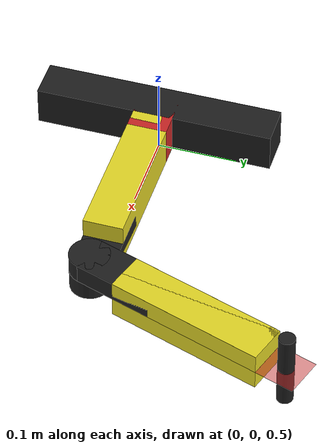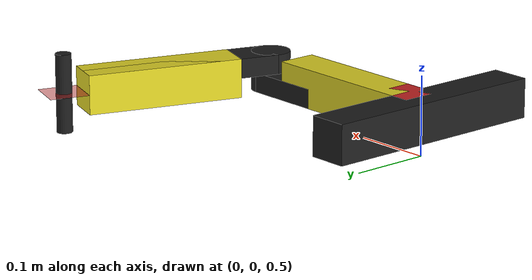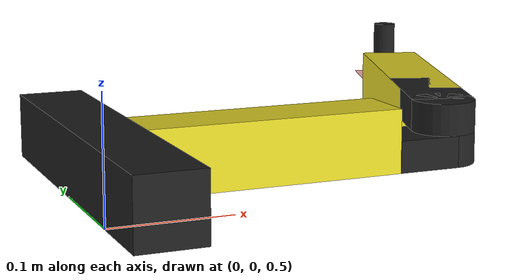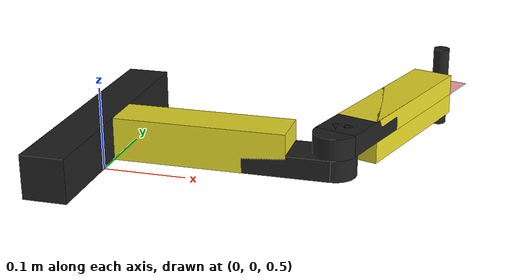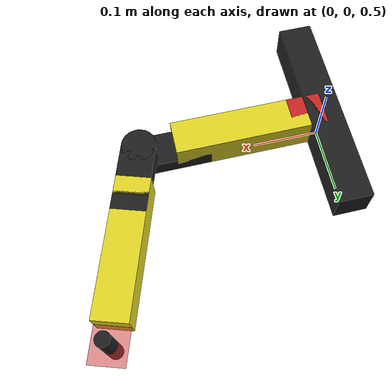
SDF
<sdf version='1.5'>
  <model name='1p_3link'>
    <self_collide>true</self_collide>

    <link name='base_link'>
      <gravity>0</gravity>
      <pose frame=''>0 0 0.55 0 0 0</pose>
      <inertial>
        <mass>10</mass>
        <inertia>
          <ixx>0.00001</ixx>
          <ixy>0</ixy>
          <ixz>0</ixz>
          <iyy>0.00001</iyy>
          <iyz>0</iyz>
          <izz>0.00001</izz>
        </inertia>
      </inertial>
      <collision name='base_link_collision'>
        <geometry>
          <box>
            <size>0.0499 0.3 0.05</size>
          </box>
        </geometry>
      </collision>
      <visual name='base_link_visual'>
        <geometry>
          <box>
            <size>0.05 0.3 0.05</size>
          </box>
        </geometry>
        <material>
          <script>
            <name>Gazebo/FlatBlack</name>
            <uri>file://media/materials/scripts/gazebo.material</uri>
          </script>
        </material>
      </visual>
    </link>

    <joint name='anchor' type='fixed'>
      <child>base_link</child>
      <parent>world</parent>
      <axis>
        <xyz>0 0 0</xyz>
      </axis>
    </joint>

    <link name='base_ft_link'>
      <gravity>0</gravity>
      <pose frame=''>0.025 0 0.55 0 0 0</pose>
      <inertial>
        <mass>10</mass>
        <inertia>
          <ixx>0.00001</ixx>
          <ixy>0</ixy>
          <ixz>0</ixz>
          <iyy>0.00001</iyy>
          <iyz>0</iyz>
          <izz>0.00001</izz>
        </inertia>
      </inertial>
      <visual name='base_ft_visual'>
        <geometry>
          <box>
            <size>0.05 0.05 0.05</size>
          </box>
        </geometry>
        <material>
          <script>
            <name>Gazebo/Red</name>
            <uri>file://media/materials/scripts/gazebo.material</uri>
          </script>
        </material>
      </visual>
    </link>

    <joint name='base_ft_joint' type='fixed'>
      <child>base_ft_link</child>
      <parent>base_link</parent>
      <axis>
        <xyz>0 0 0</xyz>
      </axis>
    </joint>

    <link name='first_link'>
      <gravity>0</gravity>
      <pose>0.025 0 0.55 0 0 0</pose>
      <inertial>
        <mass>1</mass>
        <inertia>
          <ixx>0.00526</ixx>
          <ixy>0</ixy>
          <ixz>0</ixz>
          <iyy>0.00026</iyy>
          <iyz>0</iyz>
          <izz>0.00541667</izz>
        </inertia>
      </inertial>
      <collision name='first_link_collision'>
        <pose frame=''>0.1 0 0 0 0 0</pose>
        <geometry>
          <box>
            <size>0.2 0.05 0.05</size>
          </box>
        </geometry>
      </collision>
      <collision name='first_link_collision_1'>
        <pose frame=''>0.2 0 -0.0125 0 0 0</pose>
        <geometry>
          <box>
            <size>0.1 0.05 0.025</size>
          </box>
        </geometry>
      </collision>
      <collision name='fisrt_link_collision_2'>
        <pose frame=''>0.25 0 -0.0125 0 0 0</pose>
        <geometry>
          <cylinder>
            <length>0.025</length>
            <radius>0.025</radius>
          </cylinder>
        </geometry>
      </collision>
      <visual name='first_link_visual'>
        <pose frame=''>0.1 0 0 0 0 0</pose>
        <geometry>
          <box>
            <size>0.2 0.05 0.05</size>
          </box>
        </geometry>
        <material>
          <script>
            <name>Gazebo/Yellow</name>
            <uri>file://media/materials/scripts/gazebo.material</uri>
          </script>
        </material>
      </visual>
      <visual name='first_link_visual_1'>
        <pose frame=''>0.2 0 -0.0125 0 0 0</pose>
        <geometry>
          <box>
            <size>0.1 0.05 0.025</size>
          </box>
        </geometry>
        <material>
          <script>
            <name>Gazebo/Black</name>
            <uri>file://media/materials/scripts/gazebo.material</uri>
          </script>
        </material>
      </visual>
      <visual name='first_link_visual_2'>
        <pose frame=''>0.25 0 -0.0125 0 0 0</pose>
        <geometry>
          <cylinder>
            <length>0.025</length>
            <radius>0.025</radius>
          </cylinder>
        </geometry>
        <material>
          <script>
            <name>Gazebo/Black</name>
            <uri>file://media/materials/scripts/gazebo.material</uri>
          </script>
        </material>
      </visual>
    </link>

    <joint name='first_link_ft_joint' type='fixed'>
      <child>first_link</child>
      <parent>base_ft_link</parent>
      <axis>
        <xyz>0 0 0</xyz>
      </axis>
      <sensor name='first_link_ft' type='force_torque'>
        <always_on>1</always_on>
        <update_rate>100</update_rate>
        <pose>0 0 0 0 0 0</pose>
        <plugin name='first_link_ft_plugin' filename='libgazebo_yarp_forcetorque.so'>
          <yarpConfigurationFile>model://1p_3link/conf/first_link_ft.ini</yarpConfigurationFile>
          <frame>child</frame>
          <measured_direction>child_to_parent</measured_direction>
        </plugin>
      </sensor>
    </joint>

    <link name='dummy_link'>
      <gravity>0</gravity>
      <pose>0.275 0 0.55 0 0 1.256</pose>
      <inertial>
        <mass>0.1</mass>
        <inertia>
          <ixx>0.00001</ixx>
          <ixy>0</ixy>
          <ixz>0</ixz>
          <iyy>0.00001</iyy>
          <iyz>0</iyz>
          <izz>0.00001</izz>
        </inertia>
      </inertial>
      <collision name='dummy_link_collision'>
        <pose frame=''>0 0 0.0125 0 0 0</pose>
        <geometry>
          <cylinder>
            <length>0.025</length>
            <radius>0.025</radius>
          </cylinder>
        </geometry>
      </collision>
      <collision name='dummy_link_collision_1'>
        <pose frame=''>0.05 0 0.0125 0 0 0</pose>
        <geometry>
          <box>
            <size>0.1 0.05 0.025</size>
          </box>
        </geometry>
      </collision>
      <visual name='dummy_link_visual'>
        <pose frame=''>0 0 0.0125 0 0 0</pose>
        <geometry>
          <cylinder>
            <length>0.025</length>
            <radius>0.025</radius>
          </cylinder>
        </geometry>
        <material>
          <script>
            <name>Gazebo/Black</name>
            <uri>file://media/materials/scripts/gazebo.material</uri>
          </script>
        </material>
      </visual>
      <visual name='dummy_link_visual_1'>
        <pose frame=''>0.05 0 0.0125 0 0 0</pose>
        <geometry>
          <box>
            <size>0.1 0.05 0.025</size>
          </box>
        </geometry>
        <material>
          <script>
            <name>Gazebo/Black</name>
            <uri>file://media/materials/scripts/gazebo.material</uri>
          </script>
        </material>
      </visual>
      <visual name='dummy_link_visual_2'>
        <pose frame=''>0.15 0 0.0125 0 0 0</pose>
        <geometry>
          <box>
            <size>0.2 0.05 0.025</size>
          </box>
        </geometry>
        <material>
          <script>
            <name>Gazebo/Yellow</name>
            <uri>file://media/materials/scripts/gazebo.material</uri>
          </script>
        </material>
      </visual>
    </link>

    <joint name='dummy_link_fixed_joint' type='fixed'>
      <child>first_link</child>
      <parent>dummy_link</parent>
      <axis>
        <xyz>0 0 0</xyz>
      </axis>
    </joint>

    <link name='second_link'>
      <gravity>0</gravity>
      <pose frame=''>0.29045 0.04755 0.55 0 0 1.256</pose>
      <inertial>
        <mass>1</mass>
        <inertia>
          <ixx>0.00526</ixx>
          <ixy>0</ixy>
          <ixz>0</ixz>
          <iyy>0.00026</iyy>
          <iyz>0</iyz>
          <izz>0.00541667</izz>
        </inertia>
      </inertial>
      <collision name='second_link_collision'>
        <pose frame=''>0.1 0 0 0 0 0</pose>
        <geometry>
          <box>
            <size>0.2 0.05 0.05</size>
          </box>
        </geometry>
      </collision>
      <collision name='second_link_collision_1'>
        <pose frame=''>0.225 0 0 0 0 0</pose>
        <geometry>
          <box>
            <size>0.05 0.05 0.0002</size>
          </box>
        </geometry>
      </collision>
      <visual name='second_link_visual'>
        <pose frame=''>0.1 0 0 0 0 0</pose>
        <geometry>
          <box>
            <size>0.2 0.05 0.05</size>
          </box>
        </geometry>
        <material>
          <script>
            <name>Gazebo/Yellow</name>
            <uri>file://media/materials/scripts/gazebo.material</uri>
          </script>
        </material>
      </visual>
      <visual name='second_link_visual_1'>
        <pose frame=''>0.225 0 0 0 0 0</pose>
        <geometry>
          <box>
            <size>0.05 0.05 0.0002</size>
          </box>
        </geometry>
        <material>
          <script>
            <name>Gazebo/RedTransparentOverlay</name>
            <uri>file://media/materials/scripts/gazebo.material</uri>
          </script>
        </material>
      </visual>
    </link>

    <joint name='first_joint' type='prismatic'>
      <child>second_link</child>
      <parent>dummy_link</parent>
      <axis>
        <xyz>1 0 0</xyz>
        <limit>
          <lower>0</lower>
          <upper>0.1</upper>
          <effort>30</effort>
          <velocity>10</velocity>
        </limit>
      </axis>
    </joint>

    <link name='second_link_handle'>
      <gravity>0</gravity>
      <pose frame=''>0.3595 0.2615 0.55 0 0 1.256</pose>
      <inertial>
        <mass>1</mass>
        <inertia>
          <ixx>0.00001</ixx>
          <ixy>0</ixy>
          <ixz>0</ixz>
          <iyy>0.00001</iyy>
          <iyz>0</iyz>
          <izz>0.00001</izz>
        </inertia>
      </inertial>
      <collision name='second_link_handle_collision'>
        <pose frame=''>0 0 0 0 0 0</pose>
        <geometry>
          <cylinder>
            <length>0.1</length>
            <radius>0.01</radius>
          </cylinder>
        </geometry>
      </collision>
      <visual name='second_link_handle_visual'>
        <geometry>
          <cylinder>
            <length>0.1</length>
            <radius>0.01</radius>
          </cylinder>
        </geometry>
        <material>
          <script>
            <name>Gazebo/Black</name>
            <uri>file://media/materials/scripts/gazebo.material</uri>
          </script>
        </material>
      </visual>
    </link>

    <joint name='handle_link_ft_joint' type='fixed'>
      <child>second_link_handle</child>
      <parent>second_link</parent>
      <axis>
        <xyz>0 0 0</xyz>
      </axis>
      <sensor name='second_link_ft' type='force_torque'>
        <always_on>1</always_on>
        <update_rate>100</update_rate>
        <pose>0 0 0 0 0 0</pose>
        <plugin name='second_link_ft_plugin' filename='libgazebo_yarp_forcetorque.so'>
          <yarpConfigurationFile>model://1p_3link/conf/second_link_ft.ini</yarpConfigurationFile>
          <frame>child</frame>
          <measured_direction>child_to_parent</measured_direction>
        </plugin>
      </sensor>
    </joint>

    <plugin name="controlboard" filename="libgazebo_yarp_controlboard.so">
      <yarpConfigurationFile>model://1p_3link/conf/gazebo_controlboard.ini</yarpConfigurationFile>
      <initialConfiguration>0.0</initialConfiguration>
    </plugin>

    <plugin name='second_link_handle_multi_ext_wrench' filename='libgazebo_yarp_multiexternalwrench.so'>
      <robotNamefromConfigFile>model://1p_3link/conf/gazebo_1p_3link_robotname.ini</robotNamefromConfigFile>
    </plugin>

    <plugin name='access_link_pose' filename='libgazebo_yarp_accesslinkpose.so'>
      <yarpConfigurationFile>model://1p_3link/conf/gazebo_accesslinkpose.ini</yarpConfigurationFile>
    </plugin>

  </model>
</sdf>
